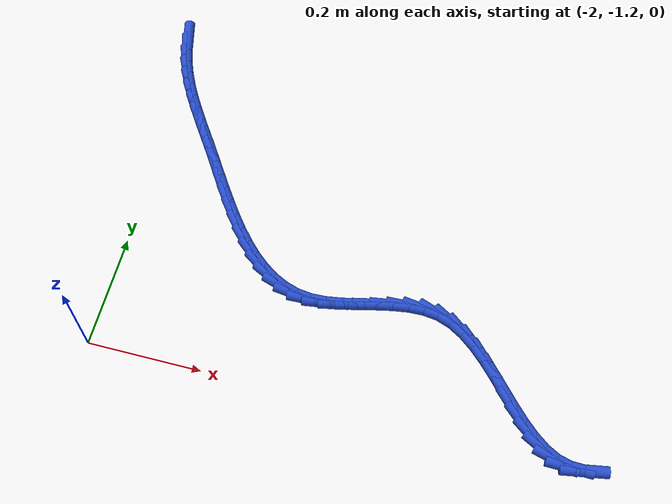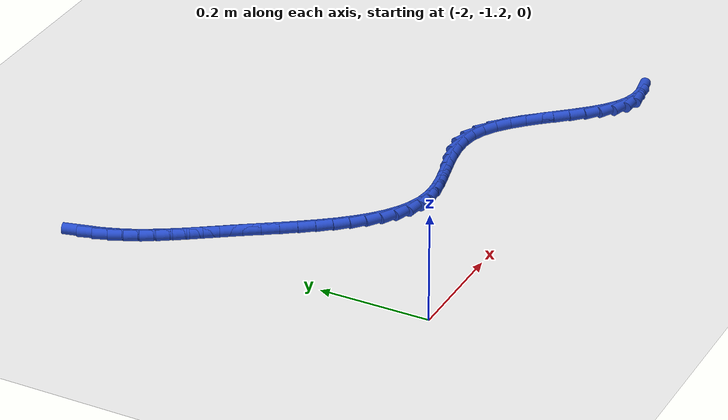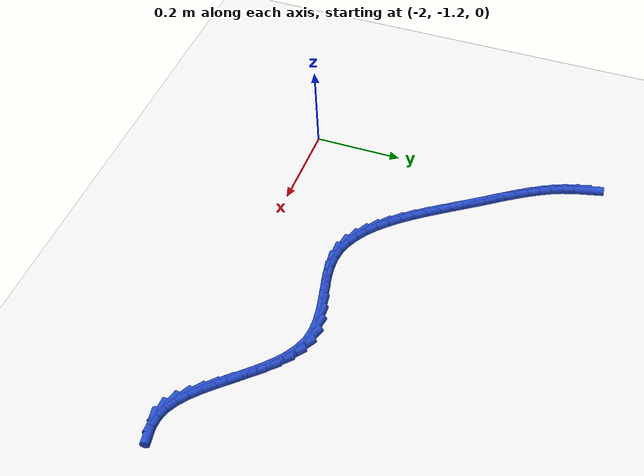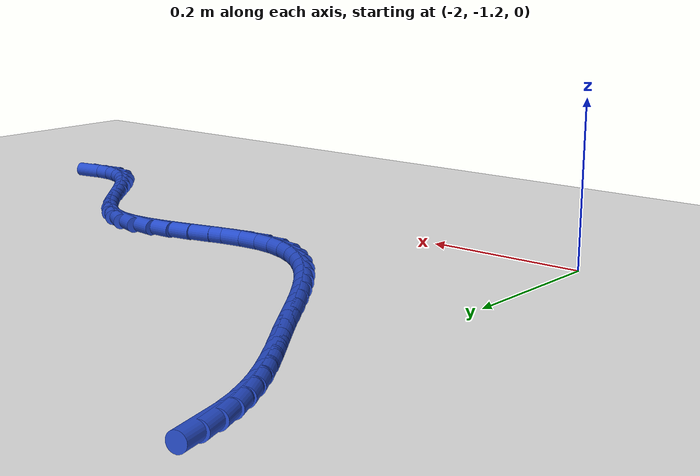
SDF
<sdf version="1.6">
 <world name="default">
  <model name="ground_plane">
   <static>1</static>
   <link name="link">
    <collision name="collision">
     <geometry><plane><normal>0 0 1</normal><size>100 100</size></plane></geometry>
     <surface><friction><ode><mu>100</mu><mu2>50</mu2></ode></friction></surface>
    </collision>
    <visual name="visual">
     <cast_shadows>0</cast_shadows>
     <geometry><plane><normal>0 0 1</normal><size>100 100</size></plane></geometry>
     <material>
      <script><uri>file://media/materials/scripts/gazebo.material</uri><name>Gazebo/WhiteGlow</name></script>
     </material>
    </visual>
   </link>
  </model>
  <model name="line">
   <link name="link_151">
    <pose>-2.028832784181881 -0.5643077085088252 0.01 0 1.57 -1.3339306765404781</pose>
    <collision name="collision">
     <geometry><cylinder><radius>0.01</radius><length>0.08</length></cylinder></geometry>
    </collision>
    <visual name="visual">
     <material>
      <script><name>Gazebo/Blue</name><uri>file://media/materials/scripts/gazebo.material</uri></script>
     </material>
     <geometry><cylinder><radius>0.01</radius><length>0.08</length></cylinder></geometry>
    </visual>
   </link>
   <link name="link_152">
    <pose>-2.0225618097316316 -0.5902855362220016 0.01 0 1.57 -1.2553367898424725</pose>
    <collision name="collision">
     <geometry><cylinder><radius>0.01</radius><length>0.08</length></cylinder></geometry>
    </collision>
    <visual name="visual">
     <material>
      <script><name>Gazebo/Blue</name><uri>file://media/materials/scripts/gazebo.material</uri></script>
     </material>
     <geometry><cylinder><radius>0.01</radius><length>0.08</length></cylinder></geometry>
    </visual>
   </link>
   <link name="link_153">
    <pose>-2.0143510087713703 -0.6154444253720001 0.01 0 1.57 -1.1780622725670615</pose>
    <collision name="collision">
     <geometry><cylinder><radius>0.01</radius><length>0.08</length></cylinder></geometry>
    </collision>
    <visual name="visual">
     <material>
      <script><name>Gazebo/Blue</name><uri>file://media/materials/scripts/gazebo.material</uri></script>
     </material>
     <geometry><cylinder><radius>0.01</radius><length>0.08</length></cylinder></geometry>
    </visual>
   </link>
   <link name="link_154">
    <pose>-2.0042349332488665 -0.6398643765070154 0.01 0 1.57 -1.1123322178256285</pose>
    <collision name="collision">
     <geometry><cylinder><radius>0.01</radius><length>0.08</length></cylinder></geometry>
    </collision>
    <visual name="visual">
     <material>
      <script><name>Gazebo/Blue</name><uri>file://media/materials/scripts/gazebo.material</uri></script>
     </material>
     <geometry><cylinder><radius>0.01</radius><length>0.08</length></cylinder></geometry>
    </visual>
   </link>
   <link name="link_155">
    <pose>-1.992446308890533 -0.6637503603192088 0.01 0 1.57 -1.0592798134520496</pose>
    <collision name="collision">
     <geometry><cylinder><radius>0.01</radius><length>0.08</length></cylinder></geometry>
    </collision>
    <visual name="visual">
     <material>
      <script><name>Gazebo/Blue</name><uri>file://media/materials/scripts/gazebo.material</uri></script>
     </material>
     <geometry><cylinder><radius>0.01</radius><length>0.08</length></cylinder></geometry>
    </visual>
   </link>
   <link name="link_156">
    <pose>-1.979221332251056 -0.6873095362358589 0.01 0 1.57 -1.019116348319491</pose>
    <collision name="collision">
     <geometry><cylinder><radius>0.01</radius><length>0.08</length></cylinder></geometry>
    </collision>
    <visual name="visual">
     <material>
      <script><name>Gazebo/Blue</name><uri>file://media/materials/scripts/gazebo.material</uri></script>
     </material>
     <geometry><cylinder><radius>0.01</radius><length>0.08</length></cylinder></geometry>
    </visual>
   </link>
   <link name="link_157">
    <pose>-1.964796199885119 -0.7107490636842423 0.01 0 1.57 -0.9915425957270722</pose>
    <collision name="collision">
     <geometry><cylinder><radius>0.01</radius><length>0.08</length></cylinder></geometry>
    </collision>
    <visual name="visual">
     <material>
      <script><name>Gazebo/Blue</name><uri>file://media/materials/scripts/gazebo.material</uri></script>
     </material>
     <geometry><cylinder><radius>0.01</radius><length>0.08</length></cylinder></geometry>
    </visual>
   </link>
   <link name="link_158">
    <pose>-1.9494071083474074 -0.7342761020916381 0.01 0 1.57 -0.9759746117471616</pose>
    <collision name="collision">
     <geometry><cylinder><radius>0.01</radius><length>0.08</length></cylinder></geometry>
    </collision>
    <visual name="visual">
     <material>
      <script><name>Gazebo/Blue</name><uri>file://media/materials/scripts/gazebo.material</uri></script>
     </material>
     <geometry><cylinder><radius>0.01</radius><length>0.08</length></cylinder></geometry>
    </visual>
   </link>
   <link name="link_159">
    <pose>-1.9332902541926038 -0.7580978108853239 0.01 0 1.57 -0.9716988619985842</pose>
    <collision name="collision">
     <geometry><cylinder><radius>0.01</radius><length>0.08</length></cylinder></geometry>
    </collision>
    <visual name="visual">
     <material>
      <script><name>Gazebo/Blue</name><uri>file://media/materials/scripts/gazebo.material</uri></script>
     </material>
     <geometry><cylinder><radius>0.01</radius><length>0.08</length></cylinder></geometry>
    </visual>
   </link>
   <link name="link_160">
    <pose>-1.916681833975395 -0.7824213494925781 0.01 0 1.57 -0.9777993794423522</pose>
    <collision name="collision">
     <geometry><cylinder><radius>0.01</radius><length>0.08</length></cylinder></geometry>
    </collision>
    <visual name="visual">
     <material>
      <script><name>Gazebo/Blue</name><uri>file://media/materials/scripts/gazebo.material</uri></script>
     </material>
     <geometry><cylinder><radius>0.01</radius><length>0.08</length></cylinder></geometry>
    </visual>
   </link>
   <link name="link_161">
    <pose>-1.8998155539991193 -0.8074490358909744 0.01 0 1.57 -0.9854983007742639</pose>
    <collision name="collision">
     <geometry><cylinder><radius>0.01</radius><length>0.08</length></cylinder></geometry>
    </collision>
    <visual name="visual">
     <material>
      <script><name>Gazebo/Blue</name><uri>file://media/materials/scripts/gazebo.material</uri></script>
     </material>
     <geometry><cylinder><radius>0.01</radius><length>0.08</length></cylinder></geometry>
    </visual>
   </link>
   <link name="link_162">
    <pose>-1.88279496308394 -0.8331301409471005 0.01 0 1.57 -0.9831072062443886</pose>
    <collision name="collision">
     <geometry><cylinder><radius>0.01</radius><length>0.08</length></cylinder></geometry>
    </collision>
    <visual name="visual">
     <material>
      <script><name>Gazebo/Blue</name><uri>file://media/materials/scripts/gazebo.material</uri></script>
     </material>
     <geometry><cylinder><radius>0.01</radius><length>0.08</length></cylinder></geometry>
    </visual>
   </link>
   <link name="link_163">
    <pose>-1.865532222620121 -0.8590418475381851 0.01 0 1.57 -0.9699284291781665</pose>
    <collision name="collision">
     <geometry><cylinder><radius>0.01</radius><length>0.08</length></cylinder></geometry>
    </collision>
    <visual name="visual">
     <material>
      <script><name>Gazebo/Blue</name><uri>file://media/materials/scripts/gazebo.material</uri></script>
     </material>
     <geometry><cylinder><radius>0.01</radius><length>0.08</length></cylinder></geometry>
    </visual>
   </link>
   <link name="link_164">
    <pose>-1.8479241842201537 -0.8847315738676124 0.01 0 1.57 -0.9455746567512525</pose>
    <collision name="collision">
     <geometry><cylinder><radius>0.01</radius><length>0.08</length></cylinder></geometry>
    </collision>
    <visual name="visual">
     <material>
      <script><name>Gazebo/Blue</name><uri>file://media/materials/scripts/gazebo.material</uri></script>
     </material>
     <geometry><cylinder><radius>0.01</radius><length>0.08</length></cylinder></geometry>
    </visual>
   </link>
   <link name="link_165">
    <pose>-1.8298676994965286 -0.9097467381387674 0.01 0 1.57 -0.9090100069273789</pose>
    <collision name="collision">
     <geometry><cylinder><radius>0.01</radius><length>0.08</length></cylinder></geometry>
    </collision>
    <visual name="visual">
     <material>
      <script><name>Gazebo/Blue</name><uri>file://media/materials/scripts/gazebo.material</uri></script>
     </material>
     <geometry><cylinder><radius>0.01</radius><length>0.08</length></cylinder></geometry>
    </visual>
   </link>
   <link name="link_166">
    <pose>-1.8112596200617372 -0.9336347585550324 0.01 0 1.57 -0.8585268553334825</pose>
    <collision name="collision">
     <geometry><cylinder><radius>0.01</radius><length>0.08</length></cylinder></geometry>
    </collision>
    <visual name="visual">
     <material>
      <script><name>Gazebo/Blue</name><uri>file://media/materials/scripts/gazebo.material</uri></script>
     </material>
     <geometry><cylinder><radius>0.01</radius><length>0.08</length></cylinder></geometry>
    </visual>
   </link>
   <link name="link_167">
    <pose>-1.7919967975282711 -0.9559430533197928 0.01 0 1.57 -0.7917329221712269</pose>
    <collision name="collision">
     <geometry><cylinder><radius>0.01</radius><length>0.08</length></cylinder></geometry>
    </collision>
    <visual name="visual">
     <material>
      <script><name>Gazebo/Blue</name><uri>file://media/materials/scripts/gazebo.material</uri></script>
     </material>
     <geometry><cylinder><radius>0.01</radius><length>0.08</length></cylinder></geometry>
    </visual>
   </link>
   <link name="link_168">
    <pose>-1.7719760835086205 -0.9762190406364321 0.01 0 1.57 -0.7056496866076261</pose>
    <collision name="collision">
     <geometry><cylinder><radius>0.01</radius><length>0.08</length></cylinder></geometry>
    </collision>
    <visual name="visual">
     <material>
      <script><name>Gazebo/Blue</name><uri>file://media/materials/scripts/gazebo.material</uri></script>
     </material>
     <geometry><cylinder><radius>0.01</radius><length>0.08</length></cylinder></geometry>
    </visual>
   </link>
   <link name="link_169">
    <pose>-1.7510943296152774 -0.9940101387083349 0.01 0 1.57 -0.5971261474214075</pose>
    <collision name="collision">
     <geometry><cylinder><radius>0.01</radius><length>0.08</length></cylinder></geometry>
    </collision>
    <visual name="visual">
     <material>
      <script><name>Gazebo/Blue</name><uri>file://media/materials/scripts/gazebo.material</uri></script>
     </material>
     <geometry><cylinder><radius>0.01</radius><length>0.08</length></cylinder></geometry>
    </visual>
   </link>
   <link name="link_170">
    <pose>-1.7292483874607314 -1.008863765738885 0.01 0 1.57 -0.46388970272971836</pose>
    <collision name="collision">
     <geometry><cylinder><radius>0.01</radius><length>0.08</length></cylinder></geometry>
    </collision>
    <visual name="visual">
     <material>
      <script><name>Gazebo/Blue</name><uri>file://media/materials/scripts/gazebo.material</uri></script>
     </material>
     <geometry><cylinder><radius>0.01</radius><length>0.08</length></cylinder></geometry>
    </visual>
   </link>
   <link name="link_171">
    <pose>-1.7063351086574756 -1.020327339931467 0.01 0 1.57 -0.3064655164874882</pose>
    <collision name="collision">
     <geometry><cylinder><radius>0.01</radius><length>0.08</length></cylinder></geometry>
    </collision>
    <visual name="visual">
     <material>
      <script><name>Gazebo/Blue</name><uri>file://media/materials/scripts/gazebo.material</uri></script>
     </material>
     <geometry><cylinder><radius>0.01</radius><length>0.08</length></cylinder></geometry>
    </visual>
   </link>
   <link name="link_172">
    <pose>-1.6822513448179994 -1.0279482794894648 0.01 0 1.57 -0.13045035299976096</pose>
    <collision name="collision">
     <geometry><cylinder><radius>0.01</radius><length>0.08</length></cylinder></geometry>
    </collision>
    <visual name="visual">
     <material>
      <script><name>Gazebo/Blue</name><uri>file://media/materials/scripts/gazebo.material</uri></script>
     </material>
     <geometry><cylinder><radius>0.01</radius><length>0.08</length></cylinder></geometry>
    </visual>
   </link>
   <link name="link_173">
    <pose>-1.6568942112020928 -1.0312750186642243 0.01 0 1.57 0.0368575977147812</pose>
    <collision name="collision">
     <geometry><cylinder><radius>0.01</radius><length>0.08</length></cylinder></geometry>
    </collision>
    <visual name="visual">
     <material>
      <script><name>Gazebo/Blue</name><uri>file://media/materials/scripts/gazebo.material</uri></script>
     </material>
     <geometry><cylinder><radius>0.01</radius><length>0.08</length></cylinder></geometry>
    </visual>
   </link>
   <link name="link_174">
    <pose>-1.6302743307389225 -1.0302934292879702 0.01 0 1.57 0.15062581130814476</pose>
    <collision name="collision">
     <geometry><cylinder><radius>0.01</radius><length>0.08</length></cylinder></geometry>
    </collision>
    <visual name="visual">
     <material>
      <script><name>Gazebo/Blue</name><uri>file://media/materials/scripts/gazebo.material</uri></script>
     </material>
     <geometry><cylinder><radius>0.01</radius><length>0.08</length></cylinder></geometry>
    </visual>
   </link>
   <link name="link_175">
    <pose>-1.602692372376429 -1.026107166947028 0.01 0 1.57 0.21342940180602238</pose>
    <collision name="collision">
     <geometry><cylinder><radius>0.01</radius><length>0.08</length></cylinder></geometry>
    </collision>
    <visual name="visual">
     <material>
      <script><name>Gazebo/Blue</name><uri>file://media/materials/scripts/gazebo.material</uri></script>
     </material>
     <geometry><cylinder><radius>0.01</radius><length>0.08</length></cylinder></geometry>
    </visual>
   </link>
   <link name="link_176">
    <pose>-1.5744946698824949 -1.0199958710046375 0.01 0 1.57 0.2330385015146466</pose>
    <collision name="collision">
     <geometry><cylinder><radius>0.01</radius><length>0.08</length></cylinder></geometry>
    </collision>
    <visual name="visual">
     <material>
      <script><name>Gazebo/Blue</name><uri>file://media/materials/scripts/gazebo.material</uri></script>
     </material>
     <geometry><cylinder><radius>0.01</radius><length>0.08</length></cylinder></geometry>
    </visual>
   </link>
   <link name="link_177">
    <pose>-1.5460275570250008 -1.013239180824037 0.01 0 1.57 0.2124007476109356</pose>
    <collision name="collision">
     <geometry><cylinder><radius>0.01</radius><length>0.08</length></cylinder></geometry>
    </collision>
    <visual name="visual">
     <material>
      <script><name>Gazebo/Blue</name><uri>file://media/materials/scripts/gazebo.material</uri></script>
     </material>
     <geometry><cylinder><radius>0.01</radius><length>0.08</length></cylinder></geometry>
    </visual>
   </link>
   <link name="link_178">
    <pose>-1.517637367571829 -1.007116735768466 0.01 0 1.57 0.14936272968711634</pose>
    <collision name="collision">
     <geometry><cylinder><radius>0.01</radius><length>0.08</length></cylinder></geometry>
    </collision>
    <visual name="visual">
     <material>
      <script><name>Gazebo/Blue</name><uri>file://media/materials/scripts/gazebo.material</uri></script>
     </material>
     <geometry><cylinder><radius>0.01</radius><length>0.08</length></cylinder></geometry>
    </visual>
   </link>
   <link name="link_179">
    <pose>-1.4896704352908596 -1.0029081752011635 0.01 0 1.57 0.0373038608857701</pose>
    <collision name="collision">
     <geometry><cylinder><radius>0.01</radius><length>0.08</length></cylinder></geometry>
    </collision>
    <visual name="visual">
     <material>
      <script><name>Gazebo/Blue</name><uri>file://media/materials/scripts/gazebo.material</uri></script>
     </material>
     <geometry><cylinder><radius>0.01</radius><length>0.08</length></cylinder></geometry>
    </visual>
   </link>
   <link name="link_180">
    <pose>-1.4624730939499748 -1.0018931384853675 0.01 0 1.57 -0.13182079046006195</pose>
    <collision name="collision">
     <geometry><cylinder><radius>0.01</radius><length>0.08</length></cylinder></geometry>
    </collision>
    <visual name="visual">
     <material>
      <script><name>Gazebo/Blue</name><uri>file://media/materials/scripts/gazebo.material</uri></script>
     </material>
     <geometry><cylinder><radius>0.01</radius><length>0.08</length></cylinder></geometry>
    </visual>
   </link>
   <link name="link_181">
    <pose>-1.4363916773170553 -1.0053512649843181 0.01 0 1.57 -0.3462040123598575</pose>
    <collision name="collision">
     <geometry><cylinder><radius>0.01</radius><length>0.08</length></cylinder></geometry>
    </collision>
    <visual name="visual">
     <material>
      <script><name>Gazebo/Blue</name><uri>file://media/materials/scripts/gazebo.material</uri></script>
     </material>
     <geometry><cylinder><radius>0.01</radius><length>0.08</length></cylinder></geometry>
    </visual>
   </link>
   <link name="link_182">
    <pose>-1.4116987104792758 -1.0142588240928296 0.01 0 1.57 -0.5329928555879324</pose>
    <collision name="collision">
     <geometry><cylinder><radius>0.01</radius><length>0.08</length></cylinder></geometry>
    </collision>
    <visual name="visual">
     <material>
      <script><name>Gazebo/Blue</name><uri>file://media/materials/scripts/gazebo.material</uri></script>
     </material>
     <geometry><cylinder><radius>0.01</radius><length>0.08</length></cylinder></geometry>
    </visual>
   </link>
   <link name="link_183">
    <pose>-1.388295313111083 -1.028065526984492 0.01 0 1.57 -0.6696143191339547</pose>
    <collision name="collision">
     <geometry><cylinder><radius>0.01</radius><length>0.08</length></cylinder></geometry>
    </collision>
    <visual name="visual">
     <material>
      <script><name>Gazebo/Blue</name><uri>file://media/materials/scripts/gazebo.material</uri></script>
     </material>
     <geometry><cylinder><radius>0.01</radius><length>0.08</length></cylinder></geometry>
    </visual>
   </link>
   <link name="link_184">
    <pose>-1.3659660392379258 -1.0457419742876795 0.01 0 1.57 -0.7626805094639441</pose>
    <collision name="collision">
     <geometry><cylinder><radius>0.01</radius><length>0.08</length></cylinder></geometry>
    </collision>
    <visual name="visual">
     <material>
      <script><name>Gazebo/Blue</name><uri>file://media/materials/scripts/gazebo.material</uri></script>
     </material>
     <geometry><cylinder><radius>0.01</radius><length>0.08</length></cylinder></geometry>
    </visual>
   </link>
   <link name="link_185">
    <pose>-1.3444954013706678 -1.0662585959966493 0.01 0 1.57 -0.8201367409900838</pose>
    <collision name="collision">
     <geometry><cylinder><radius>0.01</radius><length>0.08</length></cylinder></geometry>
    </collision>
    <visual name="visual">
     <material>
      <script><name>Gazebo/Blue</name><uri>file://media/materials/scripts/gazebo.material</uri></script>
     </material>
     <geometry><cylinder><radius>0.01</radius><length>0.08</length></cylinder></geometry>
    </visual>
   </link>
   <link name="link_186">
    <pose>-1.3236679120201713 -1.0885858221056601 0.01 0 1.57 -0.8475691706523005</pose>
    <collision name="collision">
     <geometry><cylinder><radius>0.01</radius><length>0.08</length></cylinder></geometry>
    </collision>
    <visual name="visual">
     <material>
      <script><name>Gazebo/Blue</name><uri>file://media/materials/scripts/gazebo.material</uri></script>
     </material>
     <geometry><cylinder><radius>0.01</radius><length>0.08</length></cylinder></geometry>
    </visual>
   </link>
   <link name="link_187">
    <pose>-1.3032680836972985 -1.111694082608969 0.01 0 1.57 -0.8473913946983629</pose>
    <collision name="collision">
     <geometry><cylinder><radius>0.01</radius><length>0.08</length></cylinder></geometry>
    </collision>
    <visual name="visual">
     <material>
      <script><name>Gazebo/Blue</name><uri>file://media/materials/scripts/gazebo.material</uri></script>
     </material>
     <geometry><cylinder><radius>0.01</radius><length>0.08</length></cylinder></geometry>
    </visual>
   </link>
   <link name="link_188">
    <pose>-1.2830804289129132 -1.1345538075008352 0.01 0 1.57 -0.8186768564207826</pose>
    <collision name="collision">
     <geometry><cylinder><radius>0.01</radius><length>0.08</length></cylinder></geometry>
    </collision>
    <visual name="visual">
     <material>
      <script><name>Gazebo/Blue</name><uri>file://media/materials/scripts/gazebo.material</uri></script>
     </material>
     <geometry><cylinder><radius>0.01</radius><length>0.08</length></cylinder></geometry>
    </visual>
   </link>
   <link name="link_189">
    <pose>-1.2628894601778773 -1.1561354267755144 0.01 0 1.57 -0.7567839939351714</pose>
    <collision name="collision">
     <geometry><cylinder><radius>0.01</radius><length>0.08</length></cylinder></geometry>
    </collision>
    <visual name="visual">
     <material>
      <script><name>Gazebo/Blue</name><uri>file://media/materials/scripts/gazebo.material</uri></script>
     </material>
     <geometry><cylinder><radius>0.01</radius><length>0.08</length></cylinder></geometry>
    </visual>
   </link>
   <link name="link_190">
    <pose>-1.2424796900030541 -1.1754093704272657 0.01 0 1.57 -0.6527595435049233</pose>
    <collision name="collision">
     <geometry><cylinder><radius>0.01</radius><length>0.08</length></cylinder></geometry>
    </collision>
    <visual name="visual">
     <material>
      <script><name>Gazebo/Blue</name><uri>file://media/materials/scripts/gazebo.material</uri></script>
     </material>
     <geometry><cylinder><radius>0.01</radius><length>0.08</length></cylinder></geometry>
    </visual>
   </link>
   <link name="link_191">
    <pose>-1.2216356308993062 -1.191346068450346 0.01 0 1.57 -0.4938071392124314</pose>
    <collision name="collision">
     <geometry><cylinder><radius>0.01</radius><length>0.08</length></cylinder></geometry>
    </collision>
    <visual name="visual">
     <material>
      <script><name>Gazebo/Blue</name><uri>file://media/materials/scripts/gazebo.material</uri></script>
     </material>
     <geometry><cylinder><radius>0.01</radius><length>0.08</length></cylinder></geometry>
    </visual>
   </link>
   <link name="link_192">
    <pose>-1.2001417953774964 -1.2029159508390141 0.01 0 1.57 -0.27008281767005304</pose>
    <collision name="collision">
     <geometry><cylinder><radius>0.01</radius><length>0.08</length></cylinder></geometry>
    </collision>
    <visual name="visual">
     <material>
      <script><name>Gazebo/Blue</name><uri>file://media/materials/scripts/gazebo.material</uri></script>
     </material>
     <geometry><cylinder><radius>0.01</radius><length>0.08</length></cylinder></geometry>
    </visual>
   </link>
   <link name="link_193">
    <pose>-1.177785109294359 -1.209105338996031 0.01 0 1.57 -0.024124909180913572</pose>
    <collision name="collision">
     <geometry><cylinder><radius>0.01</radius><length>0.08</length></cylinder></geometry>
    </collision>
    <visual name="visual">
     <material>
      <script><name>Gazebo/Blue</name><uri>file://media/materials/scripts/gazebo.material</uri></script>
     </material>
     <geometry><cylinder><radius>0.01</radius><length>0.08</length></cylinder></geometry>
    </visual>
   </link>
   <link name="link_194">
    <pose>-1.154469038341216 -1.2096679462423807 0.01 0 1.57 0.17249039652143372</pose>
    <collision name="collision">
     <geometry><cylinder><radius>0.01</radius><length>0.08</length></cylinder></geometry>
    </collision>
    <visual name="visual">
     <material>
      <script><name>Gazebo/Blue</name><uri>file://media/materials/scripts/gazebo.material</uri></script>
     </material>
     <geometry><cylinder><radius>0.01</radius><length>0.08</length></cylinder></geometry>
    </visual>
   </link>
  </model>
 </world>
</sdf>
